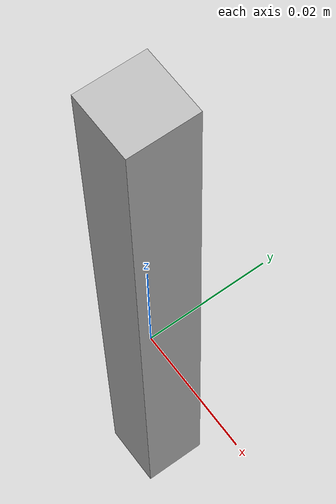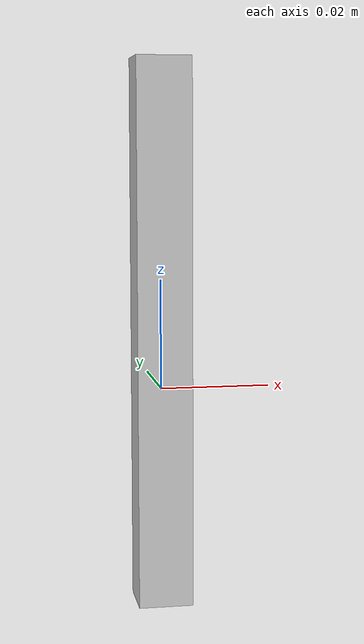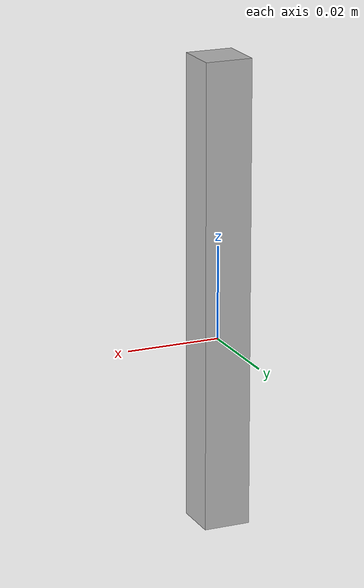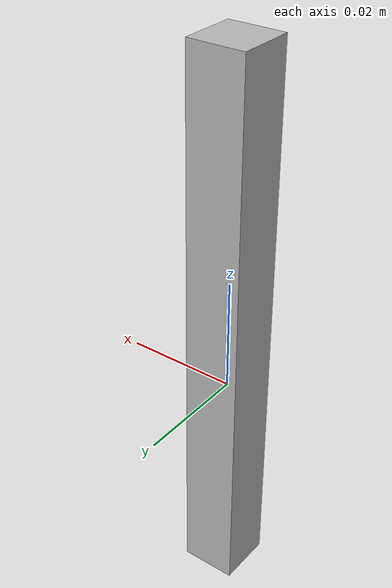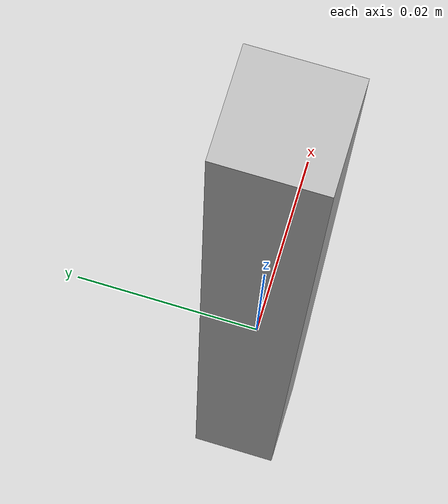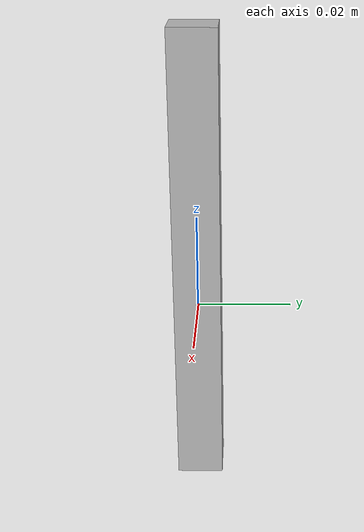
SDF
<?xml version='1.0'?>
<sdf version='1.4'>
  <model name="10mm_x_100mm_bar">
    <static>false</static>
    <link name='link'>
      <pose>0 0 0.01 0 0 0</pose>
      <inertial>
        <mass>0.01</mass>
        <inertia>
          <ixx>0.001</ixx>
          <ixy>0</ixy>
          <ixz>0</ixz>
          <iyy>0.001</iyy>
          <iyz>0</iyz>
          <izz>0.001</izz>
        </inertia>
      </inertial>
     <collision name='collision'>
        <geometry>
          <box>
            <size>0.01 0.01 0.1</size>
          </box>
        </geometry>
       <surface>
            <friction>
              <ode>
                <mu>50.0</mu>
                <mu2>50.0</mu2>
              </ode>
            </friction>
            <contact>
              <ode>
                <kp>1000000.0</kp>
                <kd>100.0</kd>
                <max_vel>1.0</max_vel>
                <min_depth>0.0005</min_depth>
              </ode>
            </contact>
          </surface>
      </collision>

      <visual name='visual'>
        <geometry>
          <box>
            <size>0.01 0.01 0.1</size>
          </box>
        </geometry>
      </visual>
    </link>
  </model>
</sdf>
